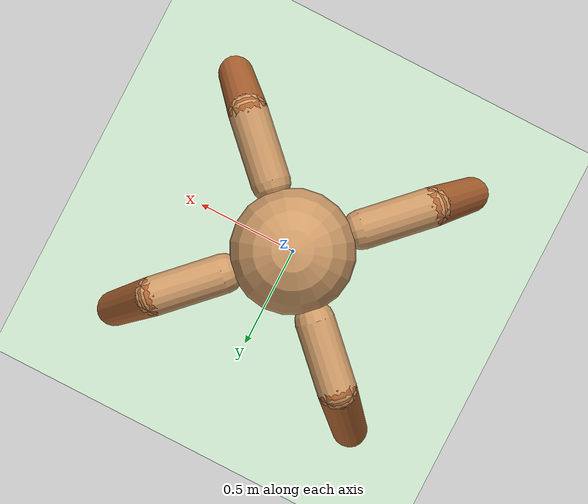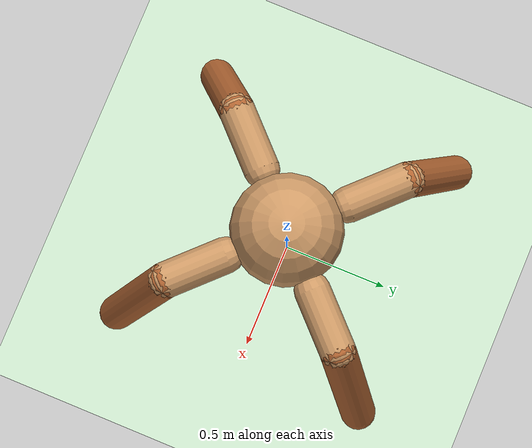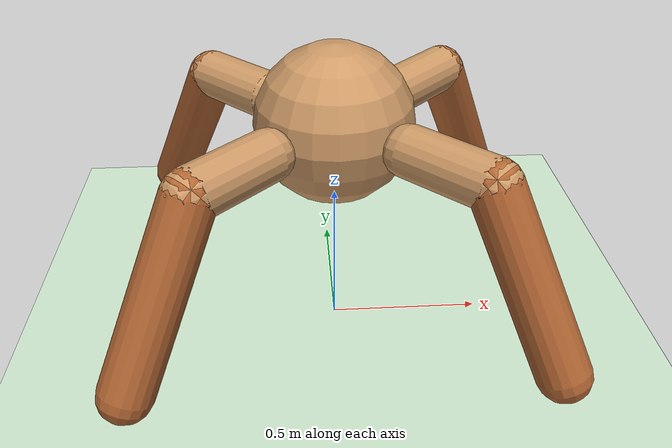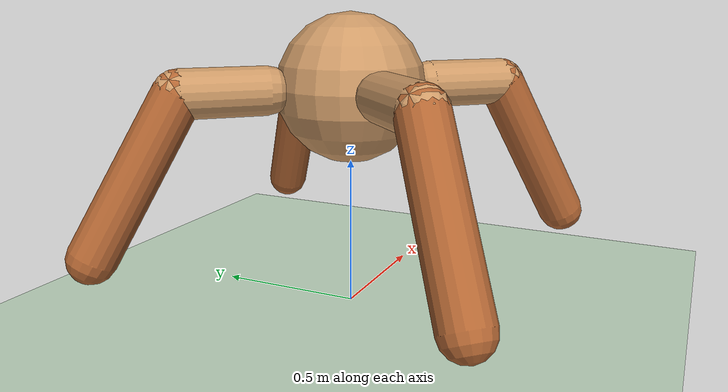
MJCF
<mujoco model="scp-ant">
  <option timestep="0.02" integrator="RK4"/>

  <default>
    <joint armature="1" damping="1" limited="true"/>
    <geom contype="1" conaffinity="1" condim="3" density="5" friction="1 0.5 0.5" margin="0.01" rgba="0.8 0.6 0.4 1"/>
  </default>

  <worldbody>
    <light cutoff="100" diffuse="1 1 1" dir="-0 0 -1.3" directional="true" exponent="1" pos="0 0 1.3" specular=".1 .1 .1"/>
    <geom name="floor" conaffinity="1" condim="3" pos="0 0 0" rgba="0.8 0.9 0.8 1" size="40 40 40" type="plane"/>

    <body name="torso" pos="0 0 0.75">
      <freejoint name="root"/>
      <geom name="torso_geom" pos="0 0 0" size="0.25" type="sphere"/>

      <!-- Front right leg -->
      <body name="fr_leg" pos="0.2 0.2 0">
        <joint axis="0 0 1" name="fr_hip" pos="0 0 0" range="-30 30" type="hinge"/>
        <geom fromto="0 0 0 0.2 0.2 0" name="fr_upper" size="0.08" type="capsule"/>
        <body name="fr_ankle" pos="0.2 0.2 0">
          <joint axis="-1 1 0" name="fr_ankle" pos="0 0 0" range="30 70" type="hinge"/>
          <geom fromto="0 0 0 0.2 0.2 -0.5" name="fr_lower" size="0.08" type="capsule" rgba="0.7 0.4 0.2 1"/>
        </body>
      </body>

      <!-- Front left leg -->
      <body name="fl_leg" pos="-0.2 0.2 0">
        <joint axis="0 0 1" name="fl_hip" pos="0 0 0" range="-30 30" type="hinge"/>
        <geom fromto="0 0 0 -0.2 0.2 0" name="fl_upper" size="0.08" type="capsule"/>
        <body name="fl_ankle" pos="-0.2 0.2 0">
          <joint axis="1 1 0" name="fl_ankle" pos="0 0 0" range="-70 -30" type="hinge"/>
          <geom fromto="0 0 0 -0.2 0.2 -0.5" name="fl_lower" size="0.08" type="capsule" rgba="0.7 0.4 0.2 1"/>
        </body>
      </body>

      <!-- Back right leg -->
      <body name="br_leg" pos="0.2 -0.2 0">
        <joint axis="0 0 1" name="br_hip" pos="0 0 0" range="-30 30" type="hinge"/>
        <geom fromto="0 0 0 0.2 -0.2 0" name="br_upper" size="0.08" type="capsule"/>
        <body name="br_ankle" pos="0.2 -0.2 0">
          <joint axis="-1 -1 0" name="br_ankle" pos="0 0 0" range="-70 -30" type="hinge"/>
          <geom fromto="0 0 0 0.2 -0.2 -0.5" name="br_lower" size="0.08" type="capsule" rgba="0.7 0.4 0.2 1"/>
        </body>
      </body>

      <!-- Back left leg -->
      <body name="bl_leg" pos="-0.2 -0.2 0">
        <joint axis="0 0 1" name="bl_hip" pos="0 0 0" range="-30 30" type="hinge"/>
        <geom fromto="0 0 0 -0.2 -0.2 0" name="bl_upper" size="0.08" type="capsule"/>
        <body name="bl_ankle" pos="-0.2 -0.2 0">
          <joint axis="1 -1 0" name="bl_ankle" pos="0 0 0" range="30 70" type="hinge"/>
          <geom fromto="0 0 0 -0.2 -0.2 -0.5" name="bl_lower" size="0.08" type="capsule" rgba="0.7 0.4 0.2 1"/>
        </body>
      </body>
    </body>
  </worldbody>

  <actuator>
    <motor joint="fr_hip" ctrlrange="-1 1" ctrllimited="true" gear="150"/>
    <motor joint="fr_ankle" ctrlrange="-1 1" ctrllimited="true" gear="150"/>
    <motor joint="fl_hip" ctrlrange="-1 1" ctrllimited="true" gear="150"/>
    <motor joint="fl_ankle" ctrlrange="-1 1" ctrllimited="true" gear="150"/>
    <motor joint="br_hip" ctrlrange="-1 1" ctrllimited="true" gear="150"/>
    <motor joint="br_ankle" ctrlrange="-1 1" ctrllimited="true" gear="150"/>
    <motor joint="bl_hip" ctrlrange="-1 1" ctrllimited="true" gear="150"/>
    <motor joint="bl_ankle" ctrlrange="-1 1" ctrllimited="true" gear="150"/>
  </actuator>
</mujoco>
